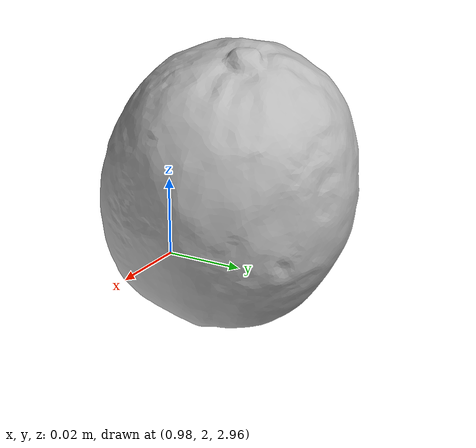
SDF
<?xml version="1.0" ?>
<sdf version="1.7">
  <!--
This SDF file was automatically generated using a template modified
and authored by Adwait Naik. The moment of interia is not supposed to be changed.
-->
    <model name="lemon">
      <pose>1.0 2.0 3.0 -1.0 -2.0 0</pose>
      <link name="link">
        <inertial>
          <inertia>
           <ixx>3.41085798454103e-08</ixx>
           <ixy>-1.4026000443507479e-24</ixy>
           <ixz>-6.657374072955688e-24</ixz>
           <iyy>3.393718081001612e-08</iyy>
           <iyz>4.276566240104417e-24</iyz>
           <izz>2.785774449123034e-08</izz>
          </inertia>
          <mass>9.683451845782233e-05</mass>
        </inertial>
        <collision name="collision">
          <geometry>
          	<mesh>
             <uri>lemon.dae</uri>
            </mesh>
          </geometry>
        </collision>

        <visual name="visual">
          <geometry>
          	<mesh>
            <uri>lemon.dae</uri>
	        </mesh>
          </geometry>
        </visual>
      </link>
    </model>
</sdf>
